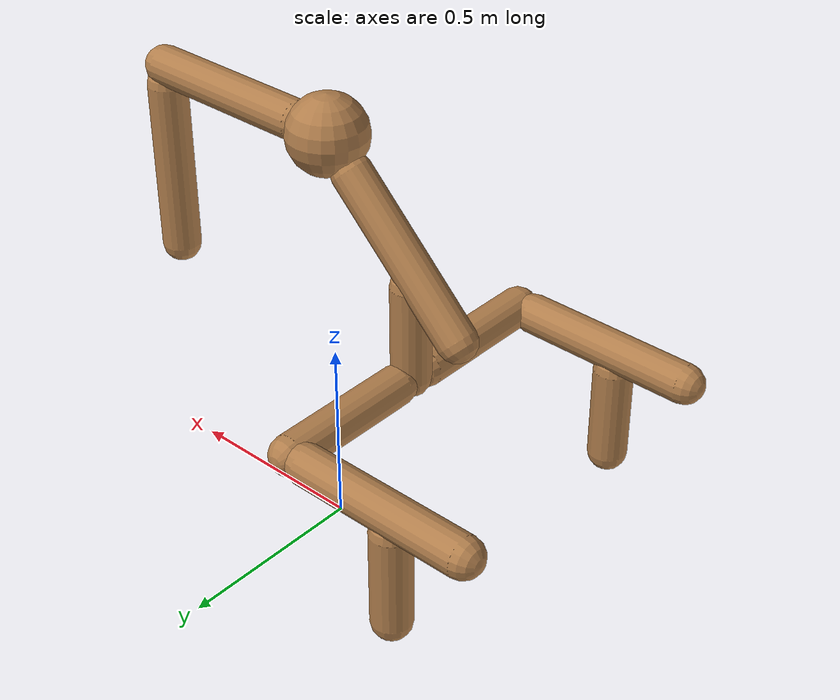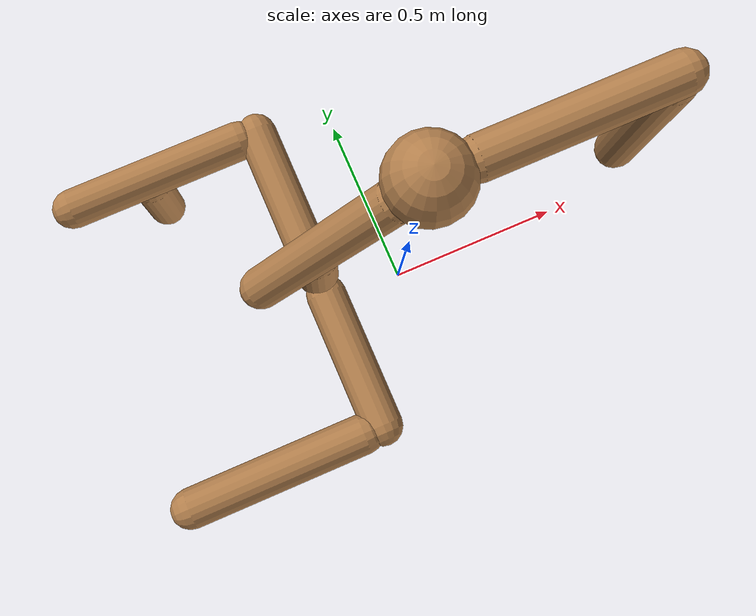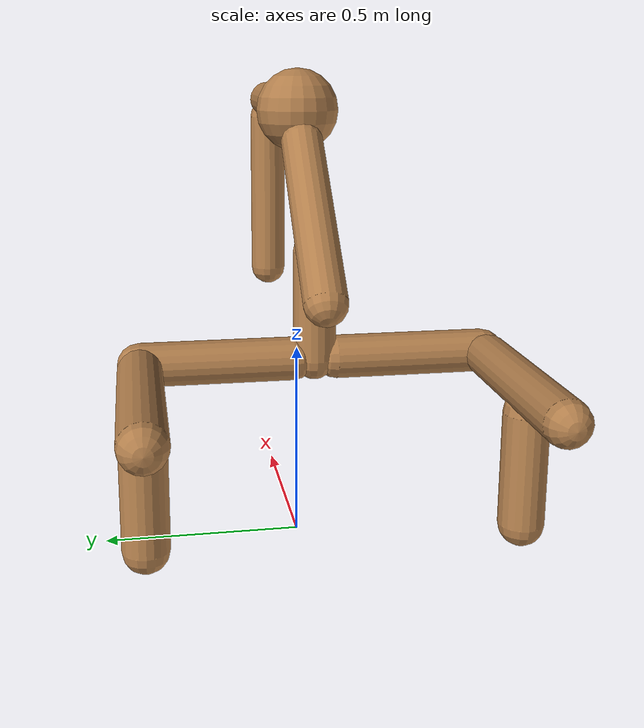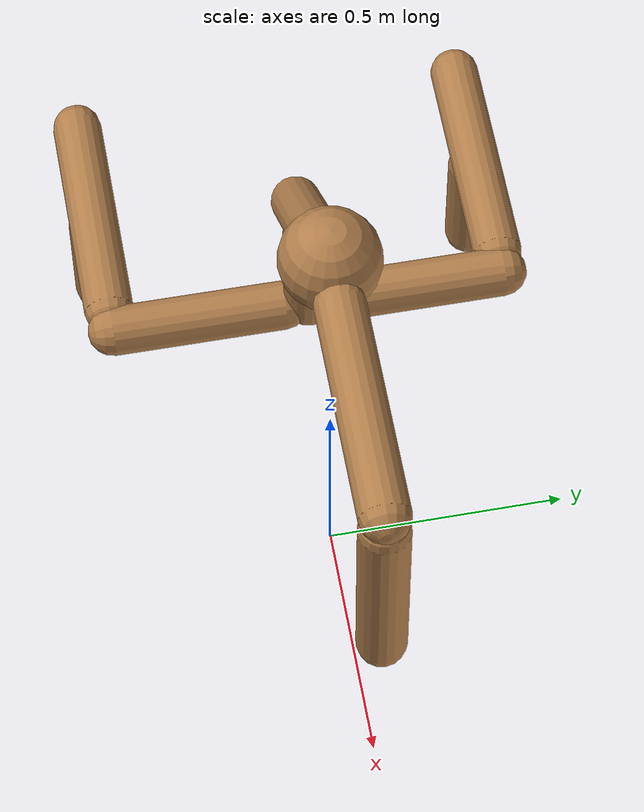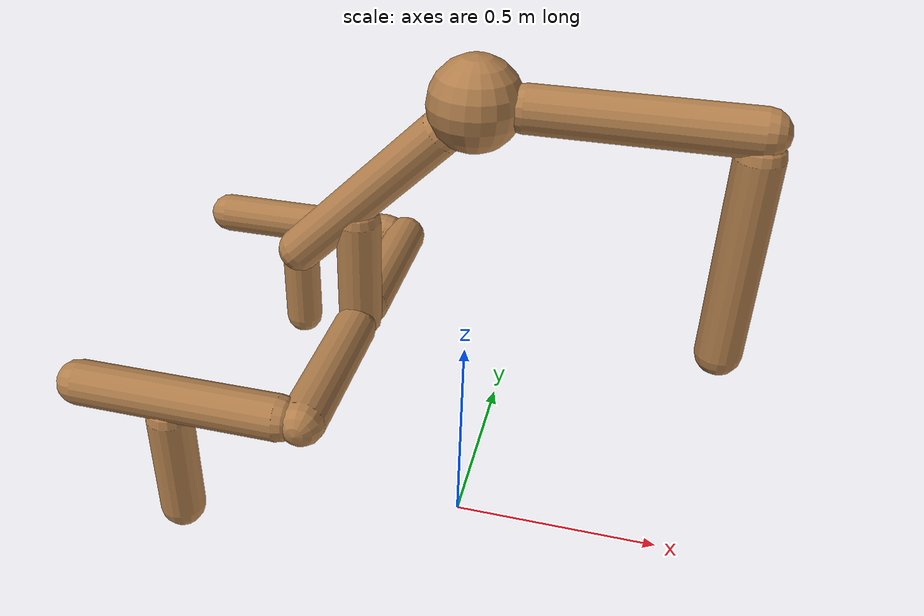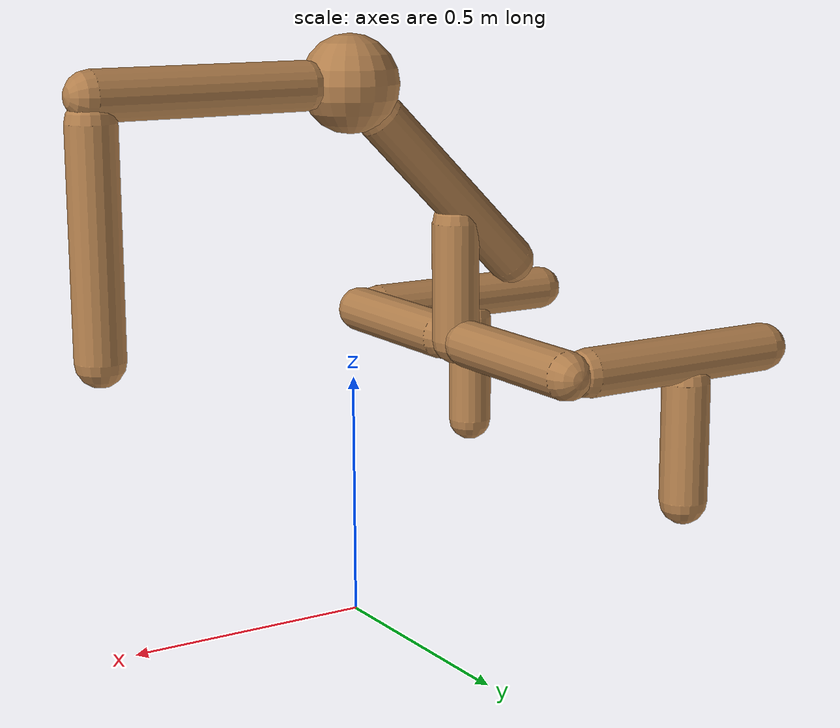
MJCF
<?xml version='1.0' encoding='UTF-8'?>
<!-- Universal Animal Template: unimal -->
<mujoco model="unimal">
  <compiler angle="degree"/>
  <size njmax="2000" nconmax="500"/>
  <option timestep=".005">
    <flag filterparent="disable"/>
  </option>
  <!-- Common defaults to make search space tractable -->
  <default>
    <!-- Define motor defaults -->
    <motor ctrlrange="-1 1" ctrllimited="true"/>
    <!-- Define joint defaults -->
    <default class="normal_joint">
      <joint type="hinge" damping="1" stiffness="1" armature="1" limited="true" range="-120 120" solimplimit="0 0.99 0.01"/>
    </default>
    <default class="walker_joint">
      <joint type="hinge" damping="0.2" stiffness="1" armature=".01" limited="true" range="-120 120" solimplimit="0 0.99 0.01"/>
    </default>
    <default class="stiff_joint">
      <joint type="hinge" damping="5" stiffness="10" armature=".01" limited="true" solimplimit="0 0.99 0.01"/>
    </default>
    <default class="free">
      <joint limited="false" damping="0" armature="0" stiffness="0"/>
    </default>
    <default class="growth_site">
      <site size="1e-6 1e-6 1e-6"/>
    </default>
    <default class="torso_growth_site">
      <site size="1e-6 1e-6 1e-6"/>
    </default>
    <default class="mirror_growth_site">
      <site size="1e-6 1e-6 1e-6"/>
    </default>
    <default class="btm_pos_site">
      <site size="1e-6 1e-6 1e-6"/>
    </default>
    <default class="box_face_site">
      <site size="1e-6 1e-6 1e-6"/>
    </default>
    <default class="imu_vel">
      <site type="box" size="0.05" rgba="1 0 0 1"/>
    </default>
    <default class="touch_site">
      <site group="3" rgba="0 0 1 .3"/>
    </default>
    <default class="food_site">
      <site material="food" size="0.15"/>
    </default>
    <!-- Define geom defaults -->
    <geom type="capsule" condim="3" friction="0.7 0.1 0.1" material="self"/>
  </default>
  <worldbody>
    <light diffuse="1 1 1" directional="true" exponent="1" pos="0 0 1" specular=".1 .1 .1"/>
    <!-- Programatically generated xml goes here -->
    <body name="torso/0" pos="0 0 1.1">
      <joint name="root" type="free" class="free"/>
      <site name="root" class="imu_vel"/>
      <geom name="torso/0" type="sphere" size="0.1" condim="3" density="1000"/>
      <camera name="side" pos="0 -7 2" xyaxes="1 0 0 0 1 2" mode="trackcom"/>
      <site name="torso/0" class="growth_site" pos="0 0 0"/>
      <site name="torso/btm_pos/0" class="btm_pos_site" pos="0 0 -0.1"/>
      <site name="torso/touch/0" class="touch_site" size="0.11"/>
      <site name="torso/horizontal_y/0" class="torso_growth_site" pos="-0.1 0 0"/>
      <body name="limb/0" pos="0.1 0.0 0.0">
        <joint name="limby/0" type="hinge" class="normal_joint" range="-30 0" pos="-0.05 0.0 0.0" axis="-0.0 1.0 0.0"/>
        <geom name="limb/0" type="capsule" fromto="0.0 0.0 0.0 0.45 0.0 0.0" size="0.05" density="900"/>
        <site name="limb/mid/0" class="growth_site" pos="0.25 0.0 0.0"/>
        <site name="limb/btm/0" class="growth_site" pos="0.45 0.0 0.0"/>
        <site name="limb/btm_pos/0" class="btm_pos_site" pos="0.45 0.0 0.0"/>
        <site name="limb/touch/0" class="touch_site" size="0.060000000000000005" fromto="0.0 0.0 0.0 0.45 0.0 0.0" type="capsule"/>
        <body name="limb/15" pos="0.45 0.0 -0.05">
          <joint name="limbx/15" type="hinge" class="normal_joint" range="-30 60" pos="0.0 0.0 0.05" axis="1.0 0.0 0.0"/>
          <joint name="limby/15" type="hinge" class="normal_joint" range="-60 30" pos="0.0 0.0 0.05" axis="0.0 1.0 0.0"/>
          <geom name="limb/15" type="capsule" fromto="0.0 0.0 0.0 0.0 0.0 -0.45" size="0.05" density="900"/>
          <site name="limb/mid/15" class="growth_site" pos="0.0 0.0 -0.25"/>
          <site name="limb/btm/15" class="growth_site" pos="0.0 0.0 -0.45"/>
          <site name="limb/btm_pos/15" class="btm_pos_site" pos="0.0 0.0 -0.5"/>
          <site name="limb/touch/15" class="touch_site" size="0.060000000000000005" fromto="0.0 0.0 0.0 0.0 0.0 -0.45" type="capsule"/>
        </body>
      </body>
      <body name="limb/10" pos="-0.07 0.0 -0.07">
        <joint name="limbx/10" type="hinge" class="normal_joint" range="-30 30" pos="0.04 0.0 0.04" axis="0.7071 0.0 -0.7071"/>
        <geom name="limb/10" type="capsule" fromto="0.0 0.0 0.0 -0.32 0.0 -0.32" size="0.05" density="900"/>
        <site name="limb/mid/10" class="growth_site" pos="-0.18 0.0 -0.18"/>
        <site name="limb/btm/10" class="growth_site" pos="-0.32 0.0 -0.32"/>
        <site name="limb/btm_pos/10" class="btm_pos_site" pos="-0.32 0.0 -0.32"/>
        <site name="limb/touch/10" class="touch_site" size="0.060000000000000005" fromto="0.0 0.0 0.0 -0.32 0.0 -0.32" type="capsule"/>
        <body name="limb/12" pos="-0.18 0.0 -0.22999999999999998">
          <joint name="limby/12" type="hinge" class="normal_joint" range="0 30" pos="0.0 0.0 0.05" axis="0.0 1.0 0.0"/>
          <geom name="limb/12" type="capsule" fromto="0.0 0.0 0.0 0.0 0.0 -0.25" size="0.05" density="900"/>
          <site name="limb/mid/12" class="growth_site" pos="0.0 0.0 -0.15"/>
          <site name="limb/btm/12" class="growth_site" pos="0.0 0.0 -0.25"/>
          <site name="limb/btm_pos/12" class="btm_pos_site" pos="0.0 0.0 -0.25"/>
          <site name="limb/touch/12" class="touch_site" size="0.060000000000000005" fromto="0.0 0.0 0.0 0.0 0.0 -0.25" type="capsule"/>
          <body name="limb/13" pos="0.0 0.05 -0.25">
            <joint name="limby/13" type="hinge" class="normal_joint" range="-30 60" pos="0.0 -0.05 0.0" axis="0.0 0.0 1.0"/>
            <geom name="limb/13" type="capsule" fromto="0.0 0.0 0.0 0.0 0.35 0.0" size="0.05" density="900"/>
            <site name="limb/mid/13" class="mirror_growth_site" pos="0.0 0.2 0.0"/>
            <site name="limb/btm/13" class="mirror_growth_site" pos="0.0 0.35 0.0"/>
            <site name="limb/btm_pos/13" class="btm_pos_site" pos="0.0 0.35 0.0"/>
            <site name="limb/touch/13" class="touch_site" size="0.060000000000000005" fromto="0.0 0.0 0.0 0.0 0.35 0.0" type="capsule"/>
            <body name="limb/16" pos="-0.05 0.35 0.0">
              <joint name="limbx/16" type="hinge" class="normal_joint" range="0 60" pos="0.05 0.0 0.0" axis="0.0 0.0 -1.0"/>
              <joint name="limby/16" type="hinge" class="normal_joint" range="-60 30" pos="0.05 0.0 0.0" axis="0.0 1.0 0.0"/>
              <geom name="limb/16" type="capsule" fromto="0.0 0.0 0.0 -0.45 0.0 0.0" size="0.05" density="900"/>
              <site name="limb/mid/16" class="mirror_growth_site" pos="-0.25 0.0 0.0"/>
              <site name="limb/btm/16" class="mirror_growth_site" pos="-0.45 0.0 0.0"/>
              <site name="limb/btm_pos/16" class="btm_pos_site" pos="-0.5 0.0 0.0"/>
              <site name="limb/touch/16" class="touch_site" size="0.060000000000000005" fromto="0.0 0.0 0.0 -0.45 0.0 0.0" type="capsule"/>
              <body name="limb/18" pos="-0.25 0.0 -0.05">
                <joint name="limbx/18" type="hinge" class="normal_joint" range="-90 0" pos="0.0 0.0 0.05" axis="1.0 0.0 0.0"/>
                <joint name="limby/18" type="hinge" class="normal_joint" range="-60 30" pos="0.0 0.0 0.05" axis="0.0 1.0 0.0"/>
                <geom name="limb/18" type="capsule" fromto="0.0 0.0 0.0 0.0 0.0 -0.25" size="0.05" density="900.0"/>
                <site name="limb/mid/18" class="mirror_growth_site" pos="0.0 0.0 -0.15"/>
                <site name="limb/btm/18" class="mirror_growth_site" pos="0.0 0.0 -0.25"/>
                <site name="limb/btm_pos/18" class="btm_pos_site" pos="0.0 0.0 -0.3"/>
                <site name="limb/touch/18" class="touch_site" size="0.060000000000000005" fromto="0.0 0.0 0.0 0.0 0.0 -0.25" type="capsule"/>
              </body>
            </body>
          </body>
          <body name="limb/14" pos="0.0 -0.05 -0.25">
            <joint name="limby/14" type="hinge" class="normal_joint" range="-30 60" pos="0.0 0.05 0.0" axis="-0.0 0.0 -1.0"/>
            <geom name="limb/14" type="capsule" fromto="0.0 0.0 0.0 0.0 -0.35 0.0" size="0.05" density="900"/>
            <site name="limb/mid/14" class="mirror_growth_site" pos="0.0 -0.2 0.0"/>
            <site name="limb/btm/14" class="mirror_growth_site" pos="0.0 -0.35 0.0"/>
            <site name="limb/btm_pos/14" class="btm_pos_site" pos="0.0 -0.35 0.0"/>
            <site name="limb/touch/14" class="touch_site" size="0.060000000000000005" fromto="0.0 0.0 0.0 0.0 -0.35 0.0" type="capsule"/>
            <body name="limb/17" pos="-0.05 -0.35 0.0">
              <joint name="limbx/17" type="hinge" class="normal_joint" range="0 60" pos="0.05 0.0 0.0" axis="0.0 0.0 -1.0"/>
              <joint name="limby/17" type="hinge" class="normal_joint" range="-60 30" pos="0.05 0.0 0.0" axis="0.0 1.0 0.0"/>
              <geom name="limb/17" type="capsule" fromto="0.0 0.0 0.0 -0.45 0.0 0.0" size="0.05" density="900"/>
              <site name="limb/mid/17" class="mirror_growth_site" pos="-0.25 0.0 0.0"/>
              <site name="limb/btm/17" class="mirror_growth_site" pos="-0.45 0.0 0.0"/>
              <site name="limb/btm_pos/17" class="btm_pos_site" pos="-0.5 0.0 0.0"/>
              <site name="limb/touch/17" class="touch_site" size="0.060000000000000005" fromto="0.0 0.0 0.0 -0.45 0.0 0.0" type="capsule"/>
              <body name="limb/19" pos="-0.25 0.0 -0.05">
                <joint name="limbx/19" type="hinge" class="normal_joint" range="-90 0" pos="0.0 0.0 0.05" axis="1.0 0.0 0.0"/>
                <joint name="limby/19" type="hinge" class="normal_joint" range="-60 30" pos="0.0 0.0 0.05" axis="0.0 1.0 0.0"/>
                <geom name="limb/19" type="capsule" fromto="0.0 0.0 0.0 0.0 0.0 -0.25" size="0.05" density="900.0"/>
                <site name="limb/mid/19" class="mirror_growth_site" pos="0.0 0.0 -0.15"/>
                <site name="limb/btm/19" class="mirror_growth_site" pos="0.0 0.0 -0.25"/>
                <site name="limb/btm_pos/19" class="btm_pos_site" pos="0.0 0.0 -0.3"/>
                <site name="limb/touch/19" class="touch_site" size="0.060000000000000005" fromto="0.0 0.0 0.0 0.0 0.0 -0.25" type="capsule"/>
              </body>
            </body>
          </body>
        </body>
      </body>
    </body>
  </worldbody>
  <actuator>
    <motor joint="limby/0" gear="200" name="limby/0"/>
    <motor joint="limbx/15" gear="200" name="limbx/15"/>
    <motor joint="limby/15" gear="300" name="limby/15"/>
    <motor joint="limbx/10" gear="300" name="limbx/10"/>
    <motor joint="limby/12" gear="300" name="limby/12"/>
    <motor joint="limby/13" gear="300" name="limby/13"/>
    <motor joint="limbx/16" gear="150" name="limbx/16"/>
    <motor joint="limby/16" gear="300" name="limby/16"/>
    <motor joint="limbx/18" gear="250" name="limbx/18"/>
    <motor joint="limby/18" gear="300" name="limby/18"/>
    <motor joint="limby/14" gear="300" name="limby/14"/>
    <motor joint="limbx/17" gear="150" name="limbx/17"/>
    <motor joint="limby/17" gear="300" name="limby/17"/>
    <motor joint="limbx/19" gear="250" name="limbx/19"/>
    <motor joint="limby/19" gear="300" name="limby/19"/>
  </actuator>
  <sensor>
    <accelerometer name="torso_accel" site="root"/>
    <gyro name="torso_gyro" site="root"/>
    <velocimeter name="torso_vel" site="root"/>
    <subtreeangmom name="unimal_am" body="torso/0"/>
    <touch name="torso/0" site="torso/touch/0"/>
    <touch name="limb/0" site="limb/touch/0"/>
    <touch name="limb/15" site="limb/touch/15"/>
    <touch name="limb/10" site="limb/touch/10"/>
    <touch name="limb/12" site="limb/touch/12"/>
    <touch name="limb/13" site="limb/touch/13"/>
    <touch name="limb/16" site="limb/touch/16"/>
    <touch name="limb/18" site="limb/touch/18"/>
    <touch name="limb/14" site="limb/touch/14"/>
    <touch name="limb/17" site="limb/touch/17"/>
    <touch name="limb/19" site="limb/touch/19"/>
  </sensor>
  <!-- Add hfield assets -->
  <asset/>
  <!-- List of contacts to exclude -->
  <contact>
    <exclude name="limb/13:limb/14" body1="limb/13" body2="limb/14"/>
  </contact>
  <!-- Define material, texture etc -->
  <asset>
    <material name="grid" texture="grid" texrepeat="1 1" texuniform="true" reflectance="0"/>
    <material name="hfield" texture="hfield" texrepeat="1 1" texuniform="true" reflectance="0"/>
    <material name="wall" texture="wall" texrepeat="1 1" texuniform="true" reflectance=".5"/>
    <material name="platform" texture="platform" texrepeat="1 1" texuniform="true" reflectance=".5"/>
    <material name="boundary" texture="boundary" texrepeat="1 1" texuniform="true" reflectance=".5"/>
    <material name="jump" texture="jump" texrepeat="1 1" texuniform="true" reflectance=".5"/>
    <material name="goal" rgba="1 0 0 1"/>
    <material name="food" rgba="0 0 1 1" emission="1"/>
    <material name="self" rgba=".7 .5 .3 1"/>
    <material name="self_default" rgba=".7 .5 .3 1"/>
    <material name="self_highlight" rgba="0 .5 .3 1"/>
    <material name="effector" rgba=".7 .4 .2 1"/>
    <material name="effector_default" rgba=".7 .4 .2 1"/>
    <material name="effector_highlight" rgba="0 .5 .3 1"/>
    <material name="decoration" rgba=".3 .5 .7 1"/>
    <material name="eye" rgba="0 .2 1 1"/>
    <material name="target" rgba=".6 .3 .3 1"/>
    <material name="target_default" rgba=".6 .3 .3 1"/>
    <material name="target_highlight" rgba=".6 .3 .3 .4"/>
    <material name="site" rgba=".5 .5 .5 .3"/>
    <material name="ball" texture="ball"/>
  </asset>
  <asset>
    <texture name="grid" type="2d" builtin="checker" rgb1="0.1 0.1 0.1" rgb2="0.1 0.1 0.1" width="300" height="300" mark="edge" markrgb="0.2 0.2 0.2"/>
    <texture name="hfield" type="2d" builtin="checker" rgb1="0.1 0.1 0.1" rgb2="0.1 0.1 0.1" width="300" height="300"/>
    <texture name="wall" type="2d" builtin="flat" rgb1="0.9 0.7 0" rgb2="0.9 0.7 0" width="300" height="300"/>
    <texture name="platform" type="2d" builtin="flat" rgb1="0.3 0 0.8" rgb2="0.3 0 0.8" width="300" height="300"/>
    <texture name="boundary" type="2d" builtin="flat" rgb1="0.3 0.3 0.3" rgb2="0.3 0.3 0.3" width="300" height="300"/>
    <texture name="jump" type="2d" builtin="flat" rgb1="0.3 0.3 0.3" rgb2="0.3 0.3 0.3" width="300" height="300"/>
    <texture name="skybox" type="skybox" builtin="flat" rgb1="0.8 1 1" rgb2="0.8 1 1" width="800" height="800"/>
    <texture name="ball" builtin="checker" mark="cross" width="151" height="151" rgb1="0.1 0.1 0.1" rgb2="0.9 0.9 0.9" markrgb="1 1 1"/>
  </asset>
  <visual>
    <headlight ambient=".4 .4 .4" diffuse=".8 .8 .8" specular="0.1 0.1 0.1"/>
    <map znear=".01"/>
    <quality shadowsize="2048"/>
  </visual>
</mujoco>
